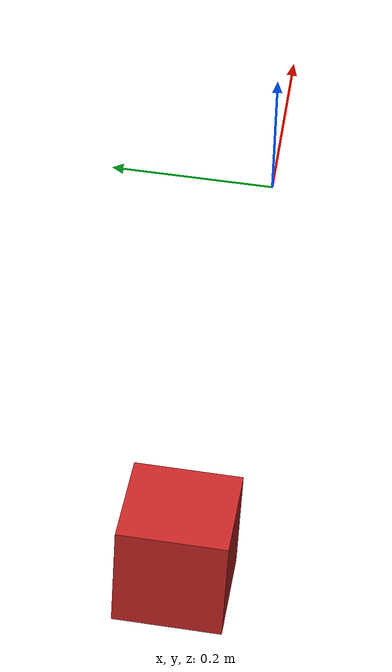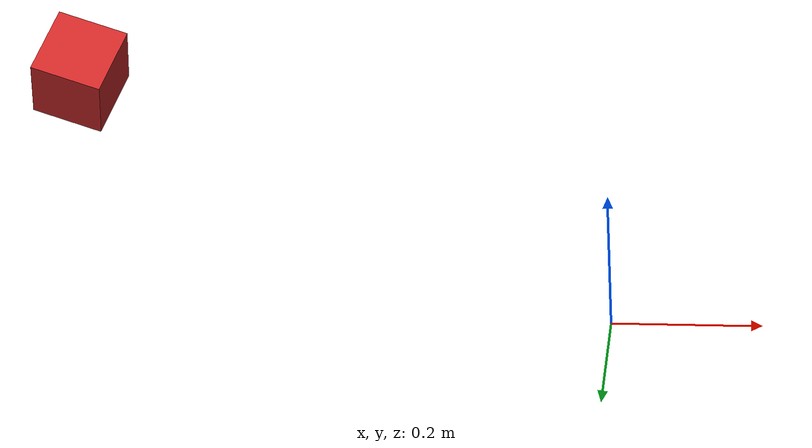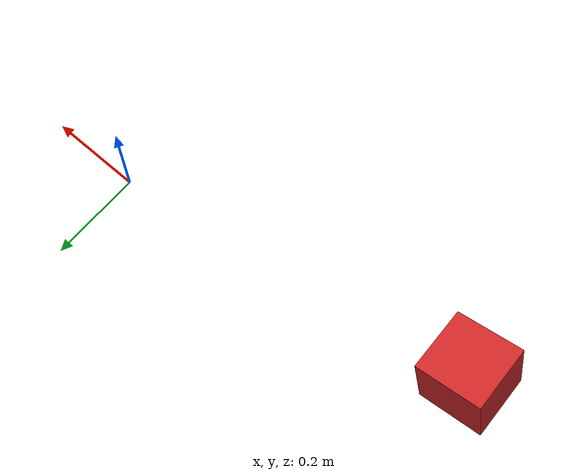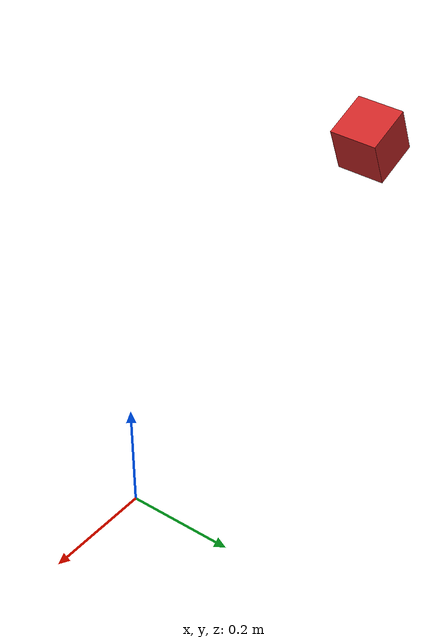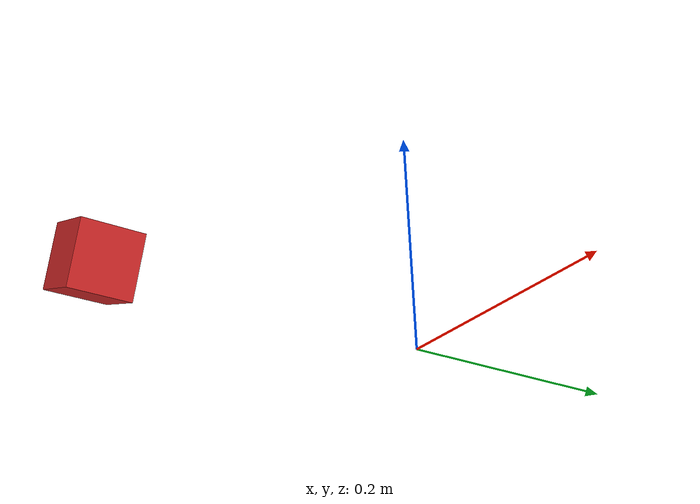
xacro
<?xml version="1.0"?>
<robot xmlns:xacro="http://ros.org/wiki/xacro">
  <xacro:property name="rgbd_dim" value="0.1" /> <!-- Size of square 'camera' box -->
  <xacro:property name="height3" value="0.05" />
  <xacro:property name="rgbd_link_name" value="rgbd_camera" />
  <xacro:property name="rgbd_optical_link_name" value="rgbd_link_optical" />

  <link name="fixed">
    <visual>
      <origin xyz="0 0 0" rpy="0 0 0"/>
      <geometry>
	<box size="0 0 0"/>
      </geometry>
    </visual>

  </link>

  <joint name="rgbd_camera_joint" type="fixed">
    <origin xyz="-0.715859 0 0.392294" rpy="0 0.354062 0"/>
    <parent link="fixed"/>
    <child link="${rgbd_link_name}"/>
  </joint>

   <!-- Camera -->
  <link name="${rgbd_link_name}">

    <collision>
      <origin xyz="0 0 0 " rpy="0 0 0"/>
      <geometry>
	<box size="${rgbd_dim} ${rgbd_dim} ${rgbd_dim}"/>
      </geometry>
    </collision>

    <visual>
      <origin xyz="0 0 0" rpy="0 0 0"/>
      <geometry>
	<box size="${rgbd_dim} ${rgbd_dim} ${rgbd_dim}"/>
      </geometry>
      <material name="red"/>
    </visual>

    <inertial>
      <mass value="1e-5" />
      <origin xyz="0 0 0" rpy="0 0 0"/>
      <inertia ixx="1e-6" ixy="0" ixz="0" iyy="1e-6" iyz="0" izz="1e-6" />
    </inertial>
  </link>

  <!-- generate an optical frame http://www.ros.org/reps/rep-0103.html#suffix-frames
      so that ros and opencv can operate on the camera frame correctly -->
  <joint name="rgbd_camera_optical_joint" type="fixed">
    <!-- these values have to be these values otherwise the gazebo camera image
        won't be aligned properly with the frame it is supposedly originating from -->
    <origin xyz="0 0 0" rpy="${-pi/2} 0 ${-pi/2}"/>
    <parent link="${rgbd_link_name}"/>
    <child link="${rgbd_optical_link_name}"/>
  </joint>

  <link name="${rgbd_optical_link_name}">
  </link>

    <gazebo reference="${rgbd_link_name}">
    <gravity>0</gravity>
  </gazebo>
    <gazebo reference="fixed">
    <gravity>0</gravity>
  </gazebo>

</robot>
